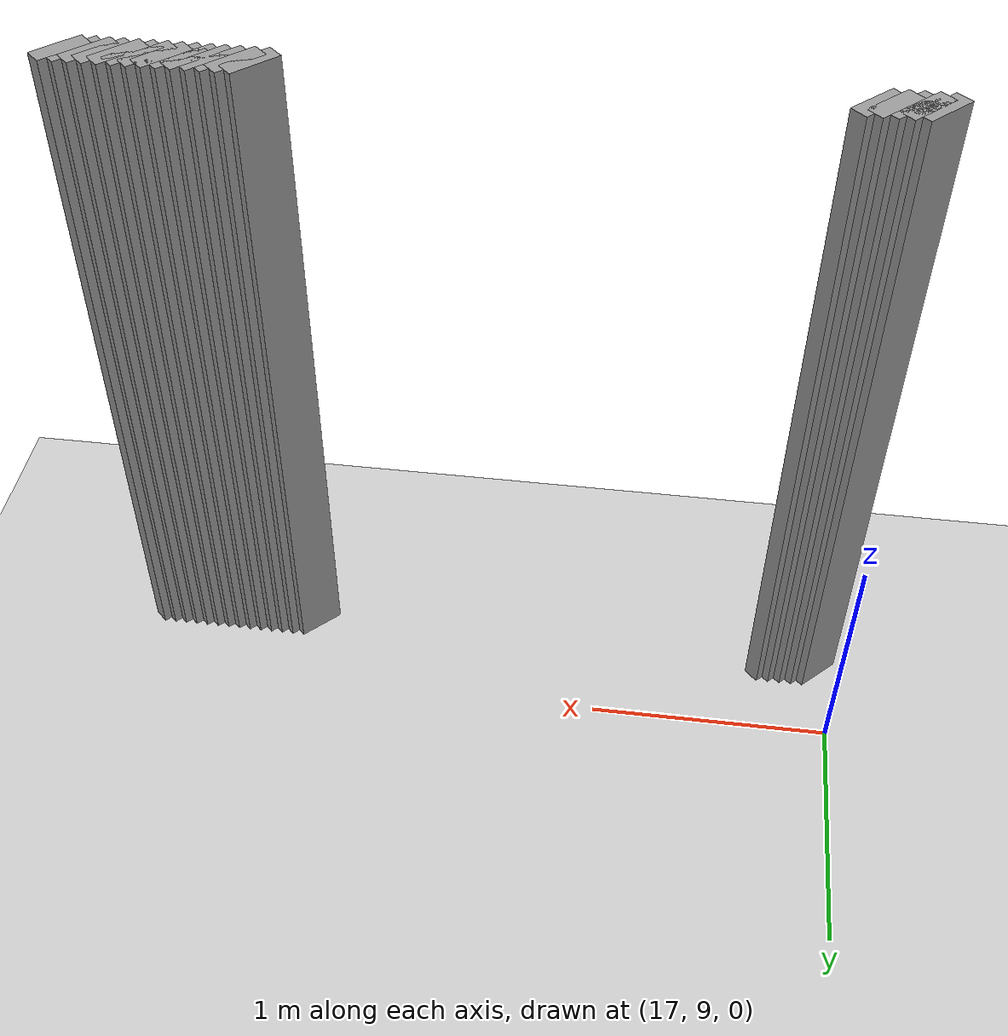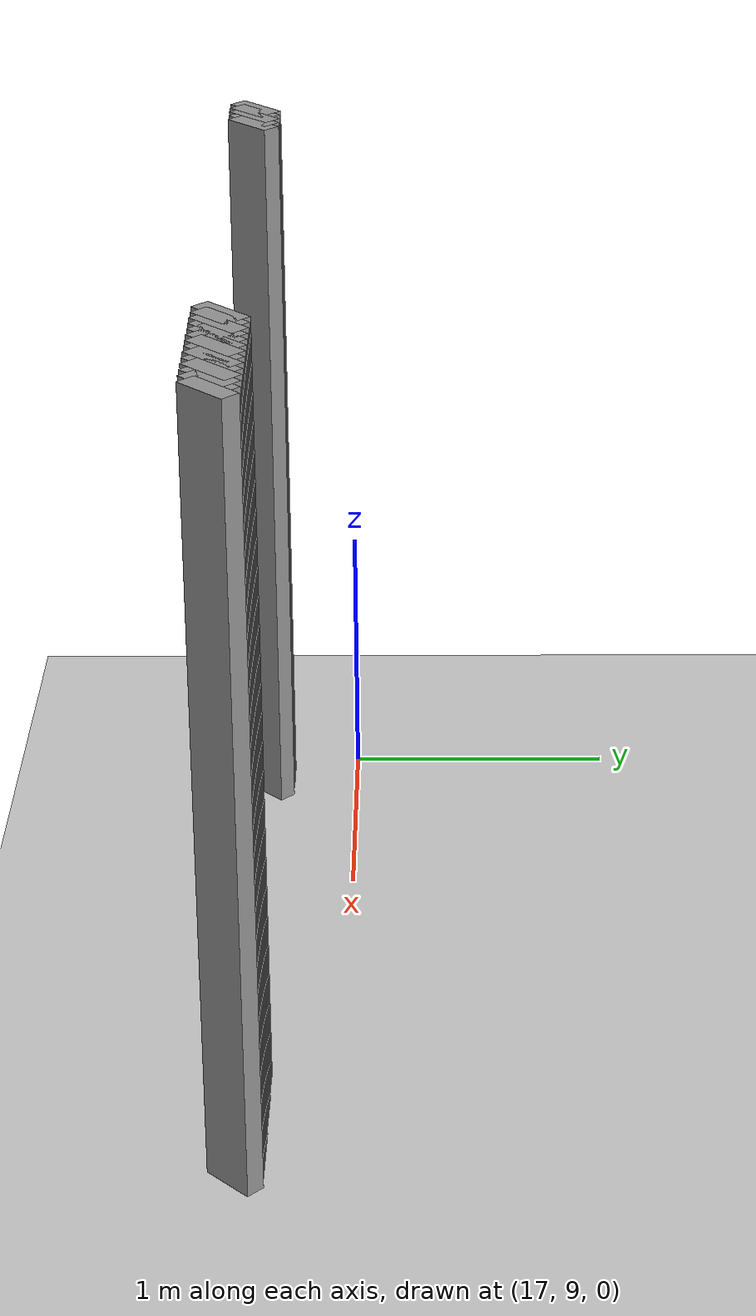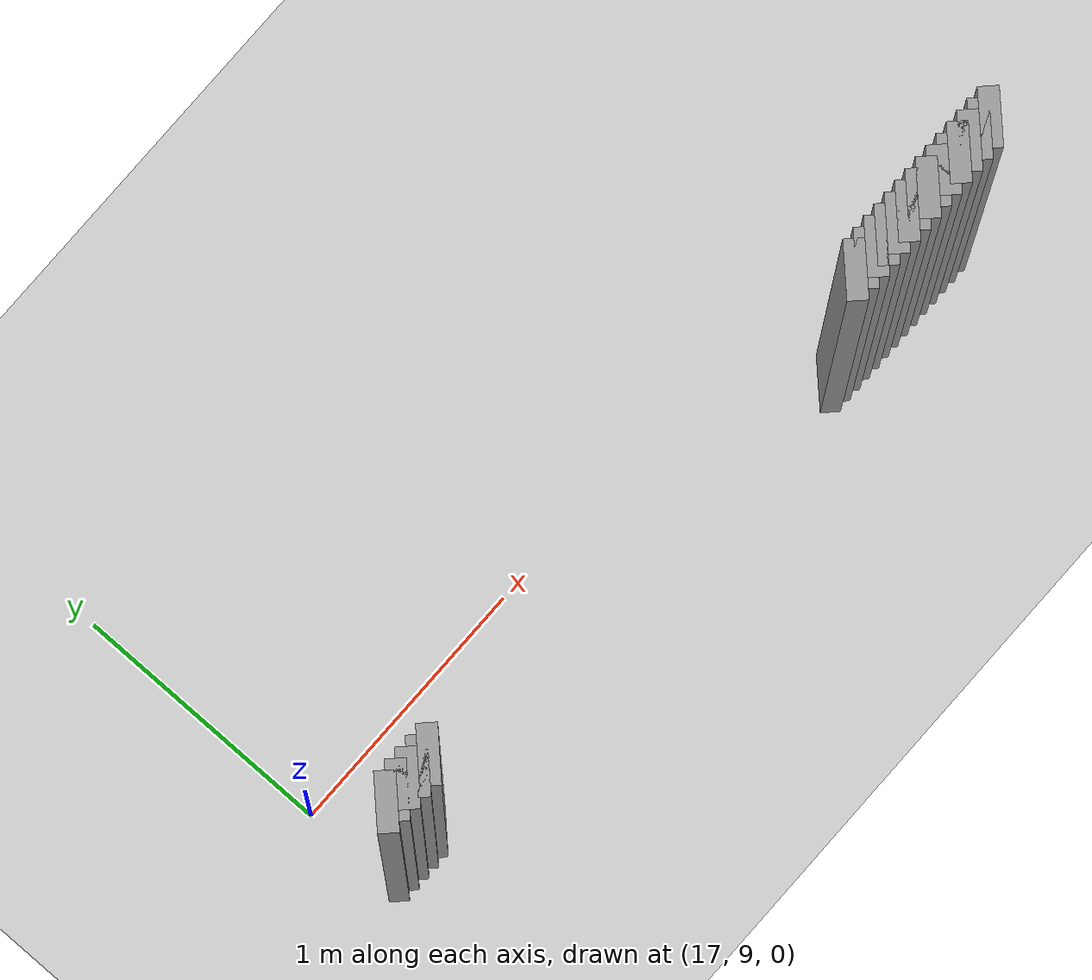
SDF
<sdf version="1.5">
 <world name="default">
  <include><uri>model://ground_plane</uri></include>
  <include><uri>model://sun</uri></include>
  <model name="grey_wall_3781">
   <static>1</static>
   <link name="link">
    <pose>17.05 8.65  1.4 0 0 -0.785398163397</pose>
    <collision name="collision"><geometry><box><size>0.0707106781187 .2  2.8</size></box></geometry></collision>
    <visual name="visual">
     <cast_shadows>0</cast_shadows>
     <geometry><box><size>0.0707106781187 .2  2.8</size></box></geometry>
     <material>
      <script>
       <uri>model://grey_wall/materials/scripts</uri>
       <uri>model://grey_wall/materials/textures</uri>
       <name>vrc/grey_wall</name>
      </script>
     </material>
    </visual>
   </link>
  </model>
  <model name="grey_wall_3782">
   <static>1</static>
   <link name="link">
    <pose>17.1 8.65  1.4 0 0 -0.785398163397</pose>
    <collision name="collision"><geometry><box><size>0.0707106781187 .2  2.8</size></box></geometry></collision>
    <visual name="visual">
     <cast_shadows>0</cast_shadows>
     <geometry><box><size>0.0707106781187 .2  2.8</size></box></geometry>
     <material>
      <script>
       <uri>model://grey_wall/materials/scripts</uri>
       <uri>model://grey_wall/materials/textures</uri>
       <name>vrc/grey_wall</name>
      </script>
     </material>
    </visual>
   </link>
  </model>
  <model name="grey_wall_3783">
   <static>1</static>
   <link name="link">
    <pose>17.15 8.65  1.4 0 0 -0.785398163397</pose>
    <collision name="collision"><geometry><box><size>0.0707106781187 .2  2.8</size></box></geometry></collision>
    <visual name="visual">
     <cast_shadows>0</cast_shadows>
     <geometry><box><size>0.0707106781187 .2  2.8</size></box></geometry>
     <material>
      <script>
       <uri>model://grey_wall/materials/scripts</uri>
       <uri>model://grey_wall/materials/textures</uri>
       <name>vrc/grey_wall</name>
      </script>
     </material>
    </visual>
   </link>
  </model>
  <model name="grey_wall_3784">
   <static>1</static>
   <link name="link">
    <pose>17.2 8.65  1.4 0 0 -0.785398163397</pose>
    <collision name="collision"><geometry><box><size>0.0707106781187 .2  2.8</size></box></geometry></collision>
    <visual name="visual">
     <cast_shadows>0</cast_shadows>
     <geometry><box><size>0.0707106781187 .2  2.8</size></box></geometry>
     <material>
      <script>
       <uri>model://grey_wall/materials/scripts</uri>
       <uri>model://grey_wall/materials/textures</uri>
       <name>vrc/grey_wall</name>
      </script>
     </material>
    </visual>
   </link>
  </model>
  <model name="grey_wall_3785">
   <static>1</static>
   <link name="link">
    <pose>17.25 8.65  1.4 0 0 -0.785398163397</pose>
    <collision name="collision"><geometry><box><size>0.0707106781187 .2  2.8</size></box></geometry></collision>
    <visual name="visual">
     <cast_shadows>0</cast_shadows>
     <geometry><box><size>0.0707106781187 .2  2.8</size></box></geometry>
     <material>
      <script>
       <uri>model://grey_wall/materials/scripts</uri>
       <uri>model://grey_wall/materials/textures</uri>
       <name>vrc/grey_wall</name>
      </script>
     </material>
    </visual>
   </link>
  </model>
  <model name="grey_wall_3786">
   <static>1</static>
   <link name="link">
    <pose>19.3 8.65  1.4 0 0 -0.785398163397</pose>
    <collision name="collision"><geometry><box><size>0.0707106781187 .2  2.8</size></box></geometry></collision>
    <visual name="visual">
     <cast_shadows>0</cast_shadows>
     <geometry><box><size>0.0707106781187 .2  2.8</size></box></geometry>
     <material>
      <script>
       <uri>model://grey_wall/materials/scripts</uri>
       <uri>model://grey_wall/materials/textures</uri>
       <name>vrc/grey_wall</name>
      </script>
     </material>
    </visual>
   </link>
  </model>
  <model name="grey_wall_3787">
   <static>1</static>
   <link name="link">
    <pose>19.35 8.65  1.4 0 0 -0.785398163397</pose>
    <collision name="collision"><geometry><box><size>0.0707106781187 .2  2.8</size></box></geometry></collision>
    <visual name="visual">
     <cast_shadows>0</cast_shadows>
     <geometry><box><size>0.0707106781187 .2  2.8</size></box></geometry>
     <material>
      <script>
       <uri>model://grey_wall/materials/scripts</uri>
       <uri>model://grey_wall/materials/textures</uri>
       <name>vrc/grey_wall</name>
      </script>
     </material>
    </visual>
   </link>
  </model>
  <model name="grey_wall_3788">
   <static>1</static>
   <link name="link">
    <pose>19.4 8.65  1.4 0 0 -0.785398163397</pose>
    <collision name="collision"><geometry><box><size>0.0707106781187 .2  2.8</size></box></geometry></collision>
    <visual name="visual">
     <cast_shadows>0</cast_shadows>
     <geometry><box><size>0.0707106781187 .2  2.8</size></box></geometry>
     <material>
      <script>
       <uri>model://grey_wall/materials/scripts</uri>
       <uri>model://grey_wall/materials/textures</uri>
       <name>vrc/grey_wall</name>
      </script>
     </material>
    </visual>
   </link>
  </model>
  <model name="grey_wall_3789">
   <static>1</static>
   <link name="link">
    <pose>19.45 8.65  1.4 0 0 -0.785398163397</pose>
    <collision name="collision"><geometry><box><size>0.0707106781187 .2  2.8</size></box></geometry></collision>
    <visual name="visual">
     <cast_shadows>0</cast_shadows>
     <geometry><box><size>0.0707106781187 .2  2.8</size></box></geometry>
     <material>
      <script>
       <uri>model://grey_wall/materials/scripts</uri>
       <uri>model://grey_wall/materials/textures</uri>
       <name>vrc/grey_wall</name>
      </script>
     </material>
    </visual>
   </link>
  </model>
  <model name="grey_wall_3790">
   <static>1</static>
   <link name="link">
    <pose>19.5 8.65  1.4 0 0 -0.785398163397</pose>
    <collision name="collision"><geometry><box><size>0.0707106781187 .2  2.8</size></box></geometry></collision>
    <visual name="visual">
     <cast_shadows>0</cast_shadows>
     <geometry><box><size>0.0707106781187 .2  2.8</size></box></geometry>
     <material>
      <script>
       <uri>model://grey_wall/materials/scripts</uri>
       <uri>model://grey_wall/materials/textures</uri>
       <name>vrc/grey_wall</name>
      </script>
     </material>
    </visual>
   </link>
  </model>
  <model name="grey_wall_3791">
   <static>1</static>
   <link name="link">
    <pose>19.55 8.65  1.4 0 0 -0.785398163397</pose>
    <collision name="collision"><geometry><box><size>0.0707106781187 .2  2.8</size></box></geometry></collision>
    <visual name="visual">
     <cast_shadows>0</cast_shadows>
     <geometry><box><size>0.0707106781187 .2  2.8</size></box></geometry>
     <material>
      <script>
       <uri>model://grey_wall/materials/scripts</uri>
       <uri>model://grey_wall/materials/textures</uri>
       <name>vrc/grey_wall</name>
      </script>
     </material>
    </visual>
   </link>
  </model>
  <model name="grey_wall_3792">
   <static>1</static>
   <link name="link">
    <pose>19.6 8.65  1.4 0 0 -0.785398163397</pose>
    <collision name="collision"><geometry><box><size>0.0707106781187 .2  2.8</size></box></geometry></collision>
    <visual name="visual">
     <cast_shadows>0</cast_shadows>
     <geometry><box><size>0.0707106781187 .2  2.8</size></box></geometry>
     <material>
      <script>
       <uri>model://grey_wall/materials/scripts</uri>
       <uri>model://grey_wall/materials/textures</uri>
       <name>vrc/grey_wall</name>
      </script>
     </material>
    </visual>
   </link>
  </model>
  <model name="grey_wall_3793">
   <static>1</static>
   <link name="link">
    <pose>19.65 8.65  1.4 0 0 -0.785398163397</pose>
    <collision name="collision"><geometry><box><size>0.0707106781187 .2  2.8</size></box></geometry></collision>
    <visual name="visual">
     <cast_shadows>0</cast_shadows>
     <geometry><box><size>0.0707106781187 .2  2.8</size></box></geometry>
     <material>
      <script>
       <uri>model://grey_wall/materials/scripts</uri>
       <uri>model://grey_wall/materials/textures</uri>
       <name>vrc/grey_wall</name>
      </script>
     </material>
    </visual>
   </link>
  </model>
  <model name="grey_wall_3794">
   <static>1</static>
   <link name="link">
    <pose>19.7 8.65  1.4 0 0 -0.785398163397</pose>
    <collision name="collision"><geometry><box><size>0.0707106781187 .2  2.8</size></box></geometry></collision>
    <visual name="visual">
     <cast_shadows>0</cast_shadows>
     <geometry><box><size>0.0707106781187 .2  2.8</size></box></geometry>
     <material>
      <script>
       <uri>model://grey_wall/materials/scripts</uri>
       <uri>model://grey_wall/materials/textures</uri>
       <name>vrc/grey_wall</name>
      </script>
     </material>
    </visual>
   </link>
  </model>
  <model name="grey_wall_3795">
   <static>1</static>
   <link name="link">
    <pose>19.75 8.65  1.4 0 0 -0.785398163397</pose>
    <collision name="collision"><geometry><box><size>0.0707106781187 .2  2.8</size></box></geometry></collision>
    <visual name="visual">
     <cast_shadows>0</cast_shadows>
     <geometry><box><size>0.0707106781187 .2  2.8</size></box></geometry>
     <material>
      <script>
       <uri>model://grey_wall/materials/scripts</uri>
       <uri>model://grey_wall/materials/textures</uri>
       <name>vrc/grey_wall</name>
      </script>
     </material>
    </visual>
   </link>
  </model>
  <model name="grey_wall_3796">
   <static>1</static>
   <link name="link">
    <pose>19.8 8.65  1.4 0 0 -0.785398163397</pose>
    <collision name="collision"><geometry><box><size>0.0707106781187 .2  2.8</size></box></geometry></collision>
    <visual name="visual">
     <cast_shadows>0</cast_shadows>
     <geometry><box><size>0.0707106781187 .2  2.8</size></box></geometry>
     <material>
      <script>
       <uri>model://grey_wall/materials/scripts</uri>
       <uri>model://grey_wall/materials/textures</uri>
       <name>vrc/grey_wall</name>
      </script>
     </material>
    </visual>
   </link>
  </model>
  <model name="grey_wall_3797">
   <static>1</static>
   <link name="link">
    <pose>19.85 8.65  1.4 0 0 -0.785398163397</pose>
    <collision name="collision"><geometry><box><size>0.0707106781187 .2  2.8</size></box></geometry></collision>
    <visual name="visual">
     <cast_shadows>0</cast_shadows>
     <geometry><box><size>0.0707106781187 .2  2.8</size></box></geometry>
     <material>
      <script>
       <uri>model://grey_wall/materials/scripts</uri>
       <uri>model://grey_wall/materials/textures</uri>
       <name>vrc/grey_wall</name>
      </script>
     </material>
    </visual>
   </link>
  </model>
  <model name="grey_wall_3798">
   <static>1</static>
   <link name="link">
    <pose>19.9 8.65  1.4 0 0 -0.785398163397</pose>
    <collision name="collision"><geometry><box><size>0.0707106781187 .2  2.8</size></box></geometry></collision>
    <visual name="visual">
     <cast_shadows>0</cast_shadows>
     <geometry><box><size>0.0707106781187 .2  2.8</size></box></geometry>
     <material>
      <script>
       <uri>model://grey_wall/materials/scripts</uri>
       <uri>model://grey_wall/materials/textures</uri>
       <name>vrc/grey_wall</name>
      </script>
     </material>
    </visual>
   </link>
  </model>
  <model name="grey_wall_3799">
   <static>1</static>
   <link name="link">
    <pose>19.95 8.65  1.4 0 0 -0.785398163397</pose>
    <collision name="collision"><geometry><box><size>0.0707106781187 .2  2.8</size></box></geometry></collision>
    <visual name="visual">
     <cast_shadows>0</cast_shadows>
     <geometry><box><size>0.0707106781187 .2  2.8</size></box></geometry>
     <material>
      <script>
       <uri>model://grey_wall/materials/scripts</uri>
       <uri>model://grey_wall/materials/textures</uri>
       <name>vrc/grey_wall</name>
      </script>
     </material>
    </visual>
   </link>
  </model>
 </world>
</sdf>
